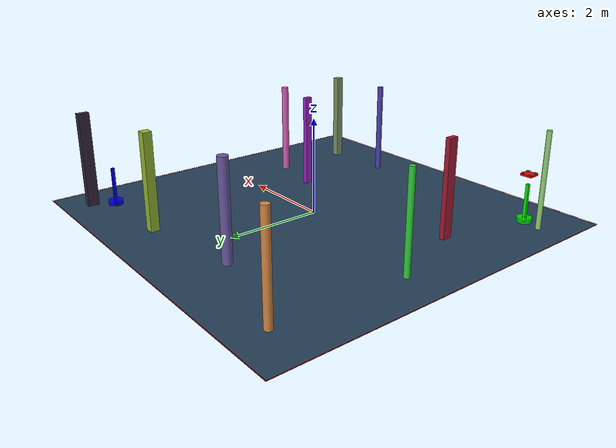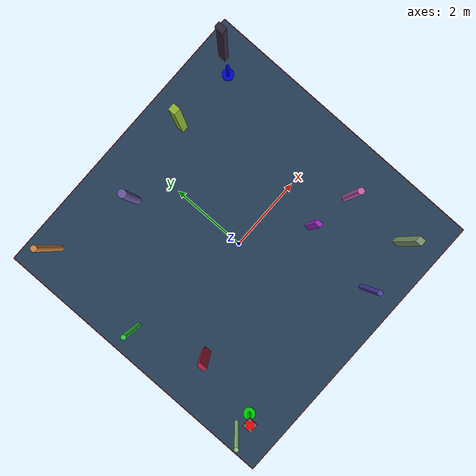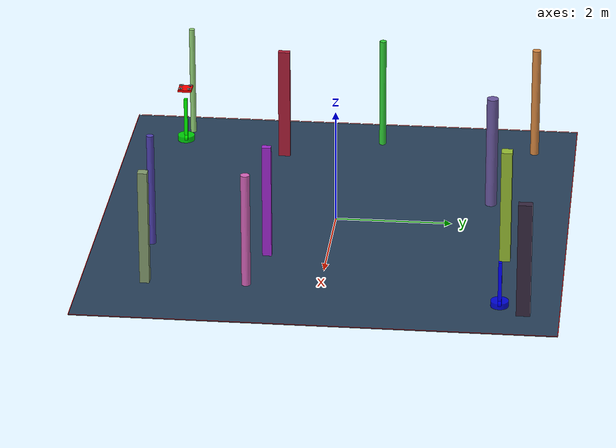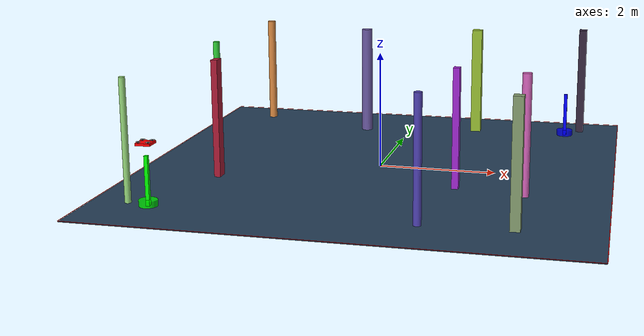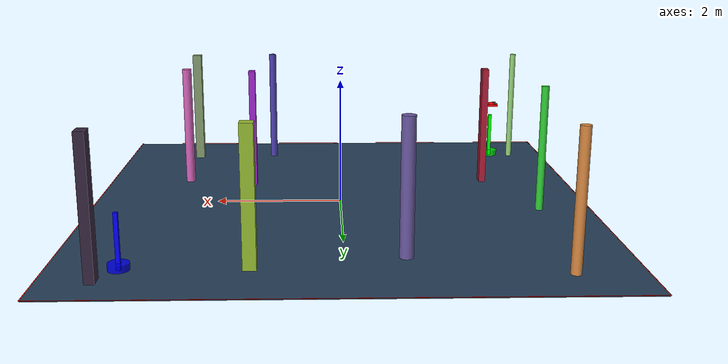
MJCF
<?xml version='1.0' encoding='utf-8'?>
<mujoco model="complex_uav_env">
  <compiler angle="degree" coordinate="local" inertiafromgeom="true" />
  <option integrator="RK4" timestep="0.01" />

  <visual>
    <headlight diffuse="0.6 0.6 0.6" ambient="0.3 0.3 0.3" />
    <rgba haze="0.15 0.25 0.35 1" />
    <global offwidth="2560" offheight="1440" />
  </visual>

  <asset>
    <texture type="skybox" builtin="gradient" rgb1="0.3 0.5 0.7" rgb2="0 0 0" width="512" height="3072" />
    <texture name="grid" type="2d" builtin="checker" rgb1="0.1 0.2 0.3" rgb2="0.2 0.3 0.4" width="512" height="512" />
    <material name="grid" texture="grid" texrepeat="1 1" />
  </asset>

  <worldbody>

    <geom name="ground" type="plane" size="4.0 4.0 0.1" material="grid" />
    <light name="light1" pos="0 0 4" dir="0 0 -1" diffuse="1 1 1" />

    <geom name="start_marker" type="cylinder" size="0.15 0.05" pos="-3.0 -3.0 0.05" rgba="0 1 0 0.8" />
    <geom name="start_pole" type="box" size="0.03 0.03 0.4" pos="-3.0 -3.0 0.4" rgba="0 1 0 1" />

    <geom name="goal_marker" type="cylinder" size="0.15 0.05" pos="3.0 3.0 0.05" rgba="0 0 1 0.8" />
    <geom name="goal_pole" type="box" size="0.03 0.03 0.4" pos="3.0 3.0 0.4" rgba="0 0 1 1" />

    <body name="chassis" pos="-3.0 -3.0 1.0">
      <joint type="free" name="root" />
      <geom type="box" size="0.12 0.12 0.02" rgba="1.0 0.0 0.0 1.0" mass="0.8" />

      <geom type="box" size="0.08 0.01 0.005" pos="0 0 0.01" rgba="0.3 0.3 0.3 1" />
      <geom type="box" size="0.01 0.08 0.005" pos="0 0 0.01" rgba="0.3 0.3 0.3 1" />

      <geom type="cylinder" size="0.015 0.02" pos="0.08 0.08 0.015" rgba="0.2 0.2 0.2 1" />
      <geom type="cylinder" size="0.015 0.02" pos="-0.08 0.08 0.015" rgba="0.2 0.2 0.2 1" />
      <geom type="cylinder" size="0.015 0.02" pos="0.08 -0.08 0.015" rgba="0.2 0.2 0.2 1" />
      <geom type="cylinder" size="0.015 0.02" pos="-0.08 -0.08 0.015" rgba="0.2 0.2 0.2 1" />

      <geom type="cylinder" size="0.04 0.002" pos="0.08 0.08 0.035" rgba="0.7 0.7 0.7 0.8" />
      <geom type="cylinder" size="0.04 0.002" pos="-0.08 0.08 0.035" rgba="0.7 0.7 0.7 0.8" />
      <geom type="cylinder" size="0.04 0.002" pos="0.08 -0.08 0.035" rgba="0.7 0.7 0.7 0.8" />
      <geom type="cylinder" size="0.04 0.002" pos="-0.08 -0.08 0.035" rgba="0.7 0.7 0.7 0.8" />

      <site name="motor1" pos="0.08 0.08 0" size="0.01" />
      <site name="motor2" pos="-0.08 0.08 0" size="0.01" />
      <site name="motor3" pos="0.08 -0.08 0" size="0.01" />
      <site name="motor4" pos="-0.08 -0.08 0" size="0.01" />
    </body>
    <geom name="test_obs_0" type="box" size="0.054197283869396574 0.0770316593004778 1.0" pos="1.48534610850717 -1.0120383574218135 1.0" rgba="0.6229643566005924 0.1536836517870075 0.8103357192288809 1.0" />
    <geom name="test_obs_1" type="cylinder" size="0.05135223456347308 1.0" pos="-3.3796842455735545 -2.9172414049684354 1.0" rgba="0.5872819638415695 0.8393434625796451 0.4817345916175517 1.0" />
    <geom name="test_obs_2" type="cylinder" size="0.07718021217360155 1.0" pos="2.6238052235725884 -1.234307317594416 1.0" rgba="0.8377267582090365 0.3896432022258429 0.7295994017542851 1.0" />
    <geom name="test_obs_3" type="cylinder" size="0.05946666595046133 1.0" pos="-3.1744532131713 0.534232888047379 1.0" rgba="0.19194883050043457 0.821950420584032 0.21808741614807411 1.0" />
    <geom name="test_obs_4" type="cylinder" size="0.07546784888407486 1.0" pos="-3.019569540770619 3.2706874458650486 1.0" rgba="0.8519188507750907 0.5389272158423133 0.25780685671239745 1.0" />
    <geom name="test_obs_5" type="box" size="0.05326267252281589 0.10345854678115152 1.0" pos="-2.5323297666766784 -1.1637598710560781 1.0" rgba="0.6688909381677771 0.11049764430420411 0.21153454633246602 1.0" />
    <geom name="test_obs_6" type="box" size="0.07843002132757776 0.0808172318966093 1.0" pos="2.664000977678584 -2.9212025461816737 1.0" rgba="0.5100960793580468 0.607319709466732 0.4275880560324721 1.0" />
    <geom name="test_obs_7" type="box" size="0.09361570870075006 0.09134664476714885 1.0" pos="1.266831765400337 2.9891613852044134 1.0" rgba="0.5881251821910952 0.7384004478709479 0.19595798141286513 1.0" />
    <geom name="test_obs_8" type="cylinder" size="0.10107179043394514 1.0" pos="-0.8549752411888619 2.6228307982614316 1.0" rgba="0.4202848746999964 0.35071294227592975 0.633933572151242 1.0" />
    <geom name="test_obs_9" type="cylinder" size="0.06331242020288974 1.0" pos="1.233786239401895 -3.0070354046484185 1.0" rgba="0.30529365239554784 0.2531076184197186 0.6930569324148114 1.0" />
    <geom name="test_obs_10" type="box" size="0.07017229405489847 0.11622245343830746 1.0" pos="3.2675884965526265 3.4021958729103394 1.0" rgba="0.20704657274307625 0.15076197124062354 0.24175611376771722 1.0" />
  <geom name="boundary_north" type="box" size="4.0 0.005 0.002" pos="0 4.0 0.002" rgba="1.0 0.0 0.0 1.0" /><geom name="boundary_south" type="box" size="4.0 0.005 0.002" pos="0 -4.0 0.002" rgba="1.0 0.0 0.0 1.0" /><geom name="boundary_east" type="box" size="0.005 4.0 0.002" pos="4.0 0 0.002" rgba="1.0 0.0 0.0 1.0" /><geom name="boundary_west" type="box" size="0.005 4.0 0.002" pos="-4.0 0 0.002" rgba="1.0 0.0 0.0 1.0" /></worldbody>

  <actuator>
    <motor name="m1" gear="0 0 1 0 0 0" site="motor1" />
    <motor name="m2" gear="0 0 1 0 0 0" site="motor2" />
    <motor name="m3" gear="0 0 1 0 0 0" site="motor3" />
    <motor name="m4" gear="0 0 1 0 0 0" site="motor4" />
  </actuator>
</mujoco>
